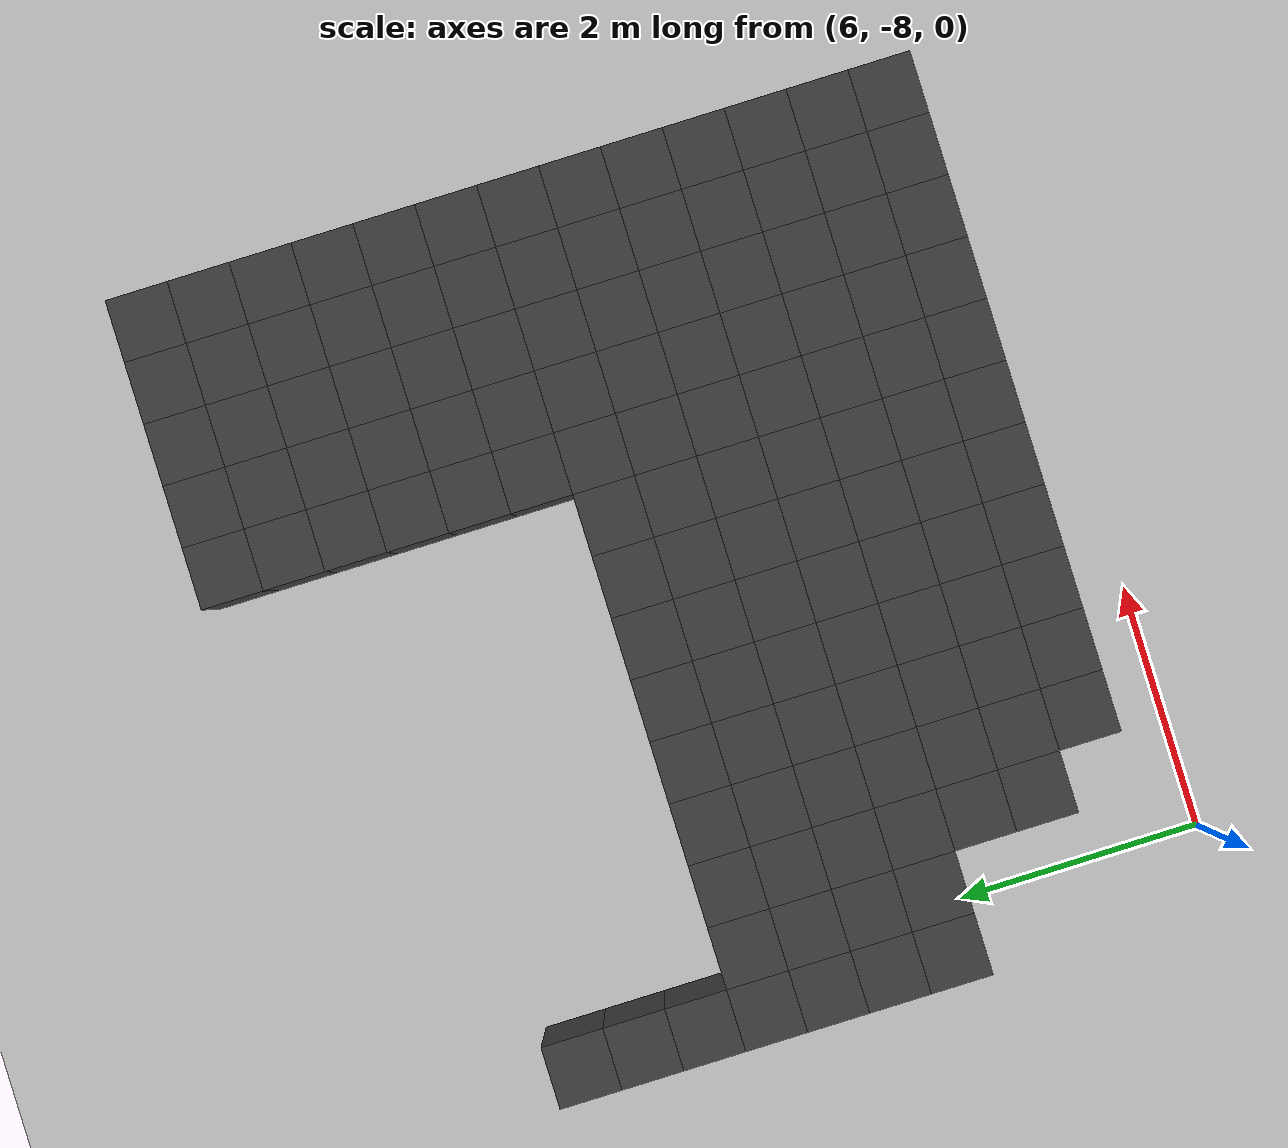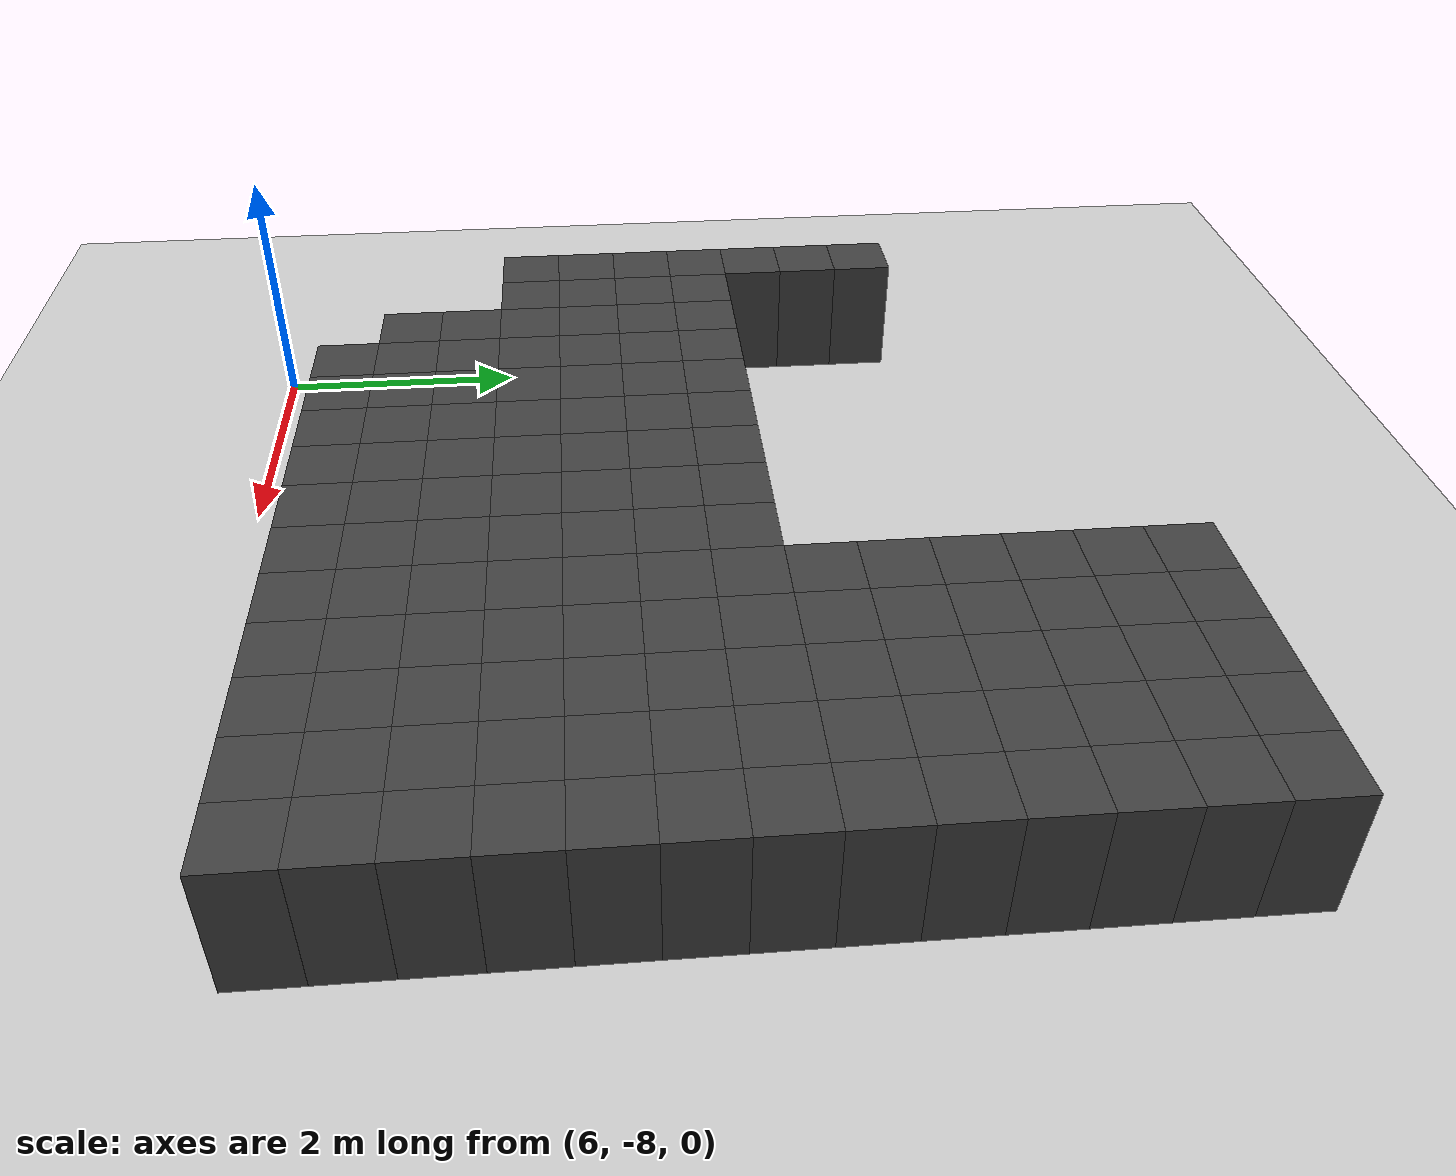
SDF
<sdf version="1.7">
 <world name="map_13364">
  <model name="ground_plane">
   <static>true</static>
   <link name="link">
    <collision name="collision">
     <geometry><plane><normal>0 0 1</normal><size>200 200</size></plane></geometry>
    </collision>
    <visual name="visual">
     <geometry><plane><normal>0 0 1</normal><size>200 200</size></plane></geometry>
     <material><ambient>0.8 0.8 0.8 1</ambient><diffuse>0.8 0.8 0.8 1</diffuse></material>
    </visual>
   </link>
  </model>
  <model name="maze_environment">
   <static>true</static>
   <link name="wall_977">
    <pose>10.250 -1.250 0.500 0 0 0</pose>
    <collision name="col"><geometry><box><size>0.5 0.5 1.0</size></box></geometry></collision>
    <visual name="vis">
     <geometry><box><size>0.5 0.5 1.0</size></box></geometry>
     <material><ambient>0.15 0.15 0.15 1</ambient><diffuse>0.25 0.25 0.25 1</diffuse></material>
    </visual>
   </link>
   <link name="wall_978">
    <pose>10.750 -1.250 0.500 0 0 0</pose>
    <collision name="col"><geometry><box><size>0.5 0.5 1.0</size></box></geometry></collision>
    <visual name="vis">
     <geometry><box><size>0.5 0.5 1.0</size></box></geometry>
     <material><ambient>0.15 0.15 0.15 1</ambient><diffuse>0.25 0.25 0.25 1</diffuse></material>
    </visual>
   </link>
   <link name="wall_979">
    <pose>11.250 -1.250 0.500 0 0 0</pose>
    <collision name="col"><geometry><box><size>0.5 0.5 1.0</size></box></geometry></collision>
    <visual name="vis">
     <geometry><box><size>0.5 0.5 1.0</size></box></geometry>
     <material><ambient>0.15 0.15 0.15 1</ambient><diffuse>0.25 0.25 0.25 1</diffuse></material>
    </visual>
   </link>
   <link name="wall_980">
    <pose>11.750 -1.250 0.500 0 0 0</pose>
    <collision name="col"><geometry><box><size>0.5 0.5 1.0</size></box></geometry></collision>
    <visual name="vis">
     <geometry><box><size>0.5 0.5 1.0</size></box></geometry>
     <material><ambient>0.15 0.15 0.15 1</ambient><diffuse>0.25 0.25 0.25 1</diffuse></material>
    </visual>
   </link>
   <link name="wall_981">
    <pose>12.250 -1.250 0.500 0 0 0</pose>
    <collision name="col"><geometry><box><size>0.5 0.5 1.0</size></box></geometry></collision>
    <visual name="vis">
     <geometry><box><size>0.5 0.5 1.0</size></box></geometry>
     <material><ambient>0.15 0.15 0.15 1</ambient><diffuse>0.25 0.25 0.25 1</diffuse></material>
    </visual>
   </link>
   <link name="wall_1008">
    <pose>10.250 -1.750 0.500 0 0 0</pose>
    <collision name="col"><geometry><box><size>0.5 0.5 1.0</size></box></geometry></collision>
    <visual name="vis">
     <geometry><box><size>0.5 0.5 1.0</size></box></geometry>
     <material><ambient>0.15 0.15 0.15 1</ambient><diffuse>0.25 0.25 0.25 1</diffuse></material>
    </visual>
   </link>
   <link name="wall_1009">
    <pose>10.750 -1.750 0.500 0 0 0</pose>
    <collision name="col"><geometry><box><size>0.5 0.5 1.0</size></box></geometry></collision>
    <visual name="vis">
     <geometry><box><size>0.5 0.5 1.0</size></box></geometry>
     <material><ambient>0.15 0.15 0.15 1</ambient><diffuse>0.25 0.25 0.25 1</diffuse></material>
    </visual>
   </link>
   <link name="wall_1010">
    <pose>11.250 -1.750 0.500 0 0 0</pose>
    <collision name="col"><geometry><box><size>0.5 0.5 1.0</size></box></geometry></collision>
    <visual name="vis">
     <geometry><box><size>0.5 0.5 1.0</size></box></geometry>
     <material><ambient>0.15 0.15 0.15 1</ambient><diffuse>0.25 0.25 0.25 1</diffuse></material>
    </visual>
   </link>
   <link name="wall_1011">
    <pose>11.750 -1.750 0.500 0 0 0</pose>
    <collision name="col"><geometry><box><size>0.5 0.5 1.0</size></box></geometry></collision>
    <visual name="vis">
     <geometry><box><size>0.5 0.5 1.0</size></box></geometry>
     <material><ambient>0.15 0.15 0.15 1</ambient><diffuse>0.25 0.25 0.25 1</diffuse></material>
    </visual>
   </link>
   <link name="wall_1012">
    <pose>12.250 -1.750 0.500 0 0 0</pose>
    <collision name="col"><geometry><box><size>0.5 0.5 1.0</size></box></geometry></collision>
    <visual name="vis">
     <geometry><box><size>0.5 0.5 1.0</size></box></geometry>
     <material><ambient>0.15 0.15 0.15 1</ambient><diffuse>0.25 0.25 0.25 1</diffuse></material>
    </visual>
   </link>
   <link name="wall_1039">
    <pose>10.250 -2.250 0.500 0 0 0</pose>
    <collision name="col"><geometry><box><size>0.5 0.5 1.0</size></box></geometry></collision>
    <visual name="vis">
     <geometry><box><size>0.5 0.5 1.0</size></box></geometry>
     <material><ambient>0.15 0.15 0.15 1</ambient><diffuse>0.25 0.25 0.25 1</diffuse></material>
    </visual>
   </link>
   <link name="wall_1040">
    <pose>10.750 -2.250 0.500 0 0 0</pose>
    <collision name="col"><geometry><box><size>0.5 0.5 1.0</size></box></geometry></collision>
    <visual name="vis">
     <geometry><box><size>0.5 0.5 1.0</size></box></geometry>
     <material><ambient>0.15 0.15 0.15 1</ambient><diffuse>0.25 0.25 0.25 1</diffuse></material>
    </visual>
   </link>
   <link name="wall_1041">
    <pose>11.250 -2.250 0.500 0 0 0</pose>
    <collision name="col"><geometry><box><size>0.5 0.5 1.0</size></box></geometry></collision>
    <visual name="vis">
     <geometry><box><size>0.5 0.5 1.0</size></box></geometry>
     <material><ambient>0.15 0.15 0.15 1</ambient><diffuse>0.25 0.25 0.25 1</diffuse></material>
    </visual>
   </link>
   <link name="wall_1042">
    <pose>11.750 -2.250 0.500 0 0 0</pose>
    <collision name="col"><geometry><box><size>0.5 0.5 1.0</size></box></geometry></collision>
    <visual name="vis">
     <geometry><box><size>0.5 0.5 1.0</size></box></geometry>
     <material><ambient>0.15 0.15 0.15 1</ambient><diffuse>0.25 0.25 0.25 1</diffuse></material>
    </visual>
   </link>
   <link name="wall_1043">
    <pose>12.250 -2.250 0.500 0 0 0</pose>
    <collision name="col"><geometry><box><size>0.5 0.5 1.0</size></box></geometry></collision>
    <visual name="vis">
     <geometry><box><size>0.5 0.5 1.0</size></box></geometry>
     <material><ambient>0.15 0.15 0.15 1</ambient><diffuse>0.25 0.25 0.25 1</diffuse></material>
    </visual>
   </link>
   <link name="wall_1078">
    <pose>5.750 -2.750 0.500 0 0 0</pose>
    <collision name="col"><geometry><box><size>0.5 0.5 1.0</size></box></geometry></collision>
    <visual name="vis">
     <geometry><box><size>0.5 0.5 1.0</size></box></geometry>
     <material><ambient>0.15 0.15 0.15 1</ambient><diffuse>0.25 0.25 0.25 1</diffuse></material>
    </visual>
   </link>
   <link name="wall_1079">
    <pose>10.250 -2.750 0.500 0 0 0</pose>
    <collision name="col"><geometry><box><size>0.5 0.5 1.0</size></box></geometry></collision>
    <visual name="vis">
     <geometry><box><size>0.5 0.5 1.0</size></box></geometry>
     <material><ambient>0.15 0.15 0.15 1</ambient><diffuse>0.25 0.25 0.25 1</diffuse></material>
    </visual>
   </link>
   <link name="wall_1080">
    <pose>10.750 -2.750 0.500 0 0 0</pose>
    <collision name="col"><geometry><box><size>0.5 0.5 1.0</size></box></geometry></collision>
    <visual name="vis">
     <geometry><box><size>0.5 0.5 1.0</size></box></geometry>
     <material><ambient>0.15 0.15 0.15 1</ambient><diffuse>0.25 0.25 0.25 1</diffuse></material>
    </visual>
   </link>
   <link name="wall_1081">
    <pose>11.250 -2.750 0.500 0 0 0</pose>
    <collision name="col"><geometry><box><size>0.5 0.5 1.0</size></box></geometry></collision>
    <visual name="vis">
     <geometry><box><size>0.5 0.5 1.0</size></box></geometry>
     <material><ambient>0.15 0.15 0.15 1</ambient><diffuse>0.25 0.25 0.25 1</diffuse></material>
    </visual>
   </link>
   <link name="wall_1082">
    <pose>11.750 -2.750 0.500 0 0 0</pose>
    <collision name="col"><geometry><box><size>0.5 0.5 1.0</size></box></geometry></collision>
    <visual name="vis">
     <geometry><box><size>0.5 0.5 1.0</size></box></geometry>
     <material><ambient>0.15 0.15 0.15 1</ambient><diffuse>0.25 0.25 0.25 1</diffuse></material>
    </visual>
   </link>
   <link name="wall_1083">
    <pose>12.250 -2.750 0.500 0 0 0</pose>
    <collision name="col"><geometry><box><size>0.5 0.5 1.0</size></box></geometry></collision>
    <visual name="vis">
     <geometry><box><size>0.5 0.5 1.0</size></box></geometry>
     <material><ambient>0.15 0.15 0.15 1</ambient><diffuse>0.25 0.25 0.25 1</diffuse></material>
    </visual>
   </link>
   <link name="wall_1118">
    <pose>5.750 -3.250 0.500 0 0 0</pose>
    <collision name="col"><geometry><box><size>0.5 0.5 1.0</size></box></geometry></collision>
    <visual name="vis">
     <geometry><box><size>0.5 0.5 1.0</size></box></geometry>
     <material><ambient>0.15 0.15 0.15 1</ambient><diffuse>0.25 0.25 0.25 1</diffuse></material>
    </visual>
   </link>
   <link name="wall_1119">
    <pose>10.250 -3.250 0.500 0 0 0</pose>
    <collision name="col"><geometry><box><size>0.5 0.5 1.0</size></box></geometry></collision>
    <visual name="vis">
     <geometry><box><size>0.5 0.5 1.0</size></box></geometry>
     <material><ambient>0.15 0.15 0.15 1</ambient><diffuse>0.25 0.25 0.25 1</diffuse></material>
    </visual>
   </link>
   <link name="wall_1120">
    <pose>10.750 -3.250 0.500 0 0 0</pose>
    <collision name="col"><geometry><box><size>0.5 0.5 1.0</size></box></geometry></collision>
    <visual name="vis">
     <geometry><box><size>0.5 0.5 1.0</size></box></geometry>
     <material><ambient>0.15 0.15 0.15 1</ambient><diffuse>0.25 0.25 0.25 1</diffuse></material>
    </visual>
   </link>
   <link name="wall_1121">
    <pose>11.250 -3.250 0.500 0 0 0</pose>
    <collision name="col"><geometry><box><size>0.5 0.5 1.0</size></box></geometry></collision>
    <visual name="vis">
     <geometry><box><size>0.5 0.5 1.0</size></box></geometry>
     <material><ambient>0.15 0.15 0.15 1</ambient><diffuse>0.25 0.25 0.25 1</diffuse></material>
    </visual>
   </link>
   <link name="wall_1122">
    <pose>11.750 -3.250 0.500 0 0 0</pose>
    <collision name="col"><geometry><box><size>0.5 0.5 1.0</size></box></geometry></collision>
    <visual name="vis">
     <geometry><box><size>0.5 0.5 1.0</size></box></geometry>
     <material><ambient>0.15 0.15 0.15 1</ambient><diffuse>0.25 0.25 0.25 1</diffuse></material>
    </visual>
   </link>
   <link name="wall_1123">
    <pose>12.250 -3.250 0.500 0 0 0</pose>
    <collision name="col"><geometry><box><size>0.5 0.5 1.0</size></box></geometry></collision>
    <visual name="vis">
     <geometry><box><size>0.5 0.5 1.0</size></box></geometry>
     <material><ambient>0.15 0.15 0.15 1</ambient><diffuse>0.25 0.25 0.25 1</diffuse></material>
    </visual>
   </link>
   <link name="wall_1153">
    <pose>5.750 -3.750 0.500 0 0 0</pose>
    <collision name="col"><geometry><box><size>0.5 0.5 1.0</size></box></geometry></collision>
    <visual name="vis">
     <geometry><box><size>0.5 0.5 1.0</size></box></geometry>
     <material><ambient>0.15 0.15 0.15 1</ambient><diffuse>0.25 0.25 0.25 1</diffuse></material>
    </visual>
   </link>
   <link name="wall_1154">
    <pose>10.250 -3.750 0.500 0 0 0</pose>
    <collision name="col"><geometry><box><size>0.5 0.5 1.0</size></box></geometry></collision>
    <visual name="vis">
     <geometry><box><size>0.5 0.5 1.0</size></box></geometry>
     <material><ambient>0.15 0.15 0.15 1</ambient><diffuse>0.25 0.25 0.25 1</diffuse></material>
    </visual>
   </link>
   <link name="wall_1155">
    <pose>10.750 -3.750 0.500 0 0 0</pose>
    <collision name="col"><geometry><box><size>0.5 0.5 1.0</size></box></geometry></collision>
    <visual name="vis">
     <geometry><box><size>0.5 0.5 1.0</size></box></geometry>
     <material><ambient>0.15 0.15 0.15 1</ambient><diffuse>0.25 0.25 0.25 1</diffuse></material>
    </visual>
   </link>
   <link name="wall_1156">
    <pose>11.250 -3.750 0.500 0 0 0</pose>
    <collision name="col"><geometry><box><size>0.5 0.5 1.0</size></box></geometry></collision>
    <visual name="vis">
     <geometry><box><size>0.5 0.5 1.0</size></box></geometry>
     <material><ambient>0.15 0.15 0.15 1</ambient><diffuse>0.25 0.25 0.25 1</diffuse></material>
    </visual>
   </link>
   <link name="wall_1157">
    <pose>11.750 -3.750 0.500 0 0 0</pose>
    <collision name="col"><geometry><box><size>0.5 0.5 1.0</size></box></geometry></collision>
    <visual name="vis">
     <geometry><box><size>0.5 0.5 1.0</size></box></geometry>
     <material><ambient>0.15 0.15 0.15 1</ambient><diffuse>0.25 0.25 0.25 1</diffuse></material>
    </visual>
   </link>
   <link name="wall_1158">
    <pose>12.250 -3.750 0.500 0 0 0</pose>
    <collision name="col"><geometry><box><size>0.5 0.5 1.0</size></box></geometry></collision>
    <visual name="vis">
     <geometry><box><size>0.5 0.5 1.0</size></box></geometry>
     <material><ambient>0.15 0.15 0.15 1</ambient><diffuse>0.25 0.25 0.25 1</diffuse></material>
    </visual>
   </link>
   <link name="wall_1188">
    <pose>5.750 -4.250 0.500 0 0 0</pose>
    <collision name="col"><geometry><box><size>0.5 0.5 1.0</size></box></geometry></collision>
    <visual name="vis">
     <geometry><box><size>0.5 0.5 1.0</size></box></geometry>
     <material><ambient>0.15 0.15 0.15 1</ambient><diffuse>0.25 0.25 0.25 1</diffuse></material>
    </visual>
   </link>
   <link name="wall_1189">
    <pose>6.250 -4.250 0.500 0 0 0</pose>
    <collision name="col"><geometry><box><size>0.5 0.5 1.0</size></box></geometry></collision>
    <visual name="vis">
     <geometry><box><size>0.5 0.5 1.0</size></box></geometry>
     <material><ambient>0.15 0.15 0.15 1</ambient><diffuse>0.25 0.25 0.25 1</diffuse></material>
    </visual>
   </link>
   <link name="wall_1190">
    <pose>6.750 -4.250 0.500 0 0 0</pose>
    <collision name="col"><geometry><box><size>0.5 0.5 1.0</size></box></geometry></collision>
    <visual name="vis">
     <geometry><box><size>0.5 0.5 1.0</size></box></geometry>
     <material><ambient>0.15 0.15 0.15 1</ambient><diffuse>0.25 0.25 0.25 1</diffuse></material>
    </visual>
   </link>
   <link name="wall_1191">
    <pose>7.250 -4.250 0.500 0 0 0</pose>
    <collision name="col"><geometry><box><size>0.5 0.5 1.0</size></box></geometry></collision>
    <visual name="vis">
     <geometry><box><size>0.5 0.5 1.0</size></box></geometry>
     <material><ambient>0.15 0.15 0.15 1</ambient><diffuse>0.25 0.25 0.25 1</diffuse></material>
    </visual>
   </link>
   <link name="wall_1192">
    <pose>7.750 -4.250 0.500 0 0 0</pose>
    <collision name="col"><geometry><box><size>0.5 0.5 1.0</size></box></geometry></collision>
    <visual name="vis">
     <geometry><box><size>0.5 0.5 1.0</size></box></geometry>
     <material><ambient>0.15 0.15 0.15 1</ambient><diffuse>0.25 0.25 0.25 1</diffuse></material>
    </visual>
   </link>
   <link name="wall_1193">
    <pose>8.250 -4.250 0.500 0 0 0</pose>
    <collision name="col"><geometry><box><size>0.5 0.5 1.0</size></box></geometry></collision>
    <visual name="vis">
     <geometry><box><size>0.5 0.5 1.0</size></box></geometry>
     <material><ambient>0.15 0.15 0.15 1</ambient><diffuse>0.25 0.25 0.25 1</diffuse></material>
    </visual>
   </link>
   <link name="wall_1194">
    <pose>8.750 -4.250 0.500 0 0 0</pose>
    <collision name="col"><geometry><box><size>0.5 0.5 1.0</size></box></geometry></collision>
    <visual name="vis">
     <geometry><box><size>0.5 0.5 1.0</size></box></geometry>
     <material><ambient>0.15 0.15 0.15 1</ambient><diffuse>0.25 0.25 0.25 1</diffuse></material>
    </visual>
   </link>
   <link name="wall_1195">
    <pose>9.250 -4.250 0.500 0 0 0</pose>
    <collision name="col"><geometry><box><size>0.5 0.5 1.0</size></box></geometry></collision>
    <visual name="vis">
     <geometry><box><size>0.5 0.5 1.0</size></box></geometry>
     <material><ambient>0.15 0.15 0.15 1</ambient><diffuse>0.25 0.25 0.25 1</diffuse></material>
    </visual>
   </link>
   <link name="wall_1196">
    <pose>9.750 -4.250 0.500 0 0 0</pose>
    <collision name="col"><geometry><box><size>0.5 0.5 1.0</size></box></geometry></collision>
    <visual name="vis">
     <geometry><box><size>0.5 0.5 1.0</size></box></geometry>
     <material><ambient>0.15 0.15 0.15 1</ambient><diffuse>0.25 0.25 0.25 1</diffuse></material>
    </visual>
   </link>
   <link name="wall_1197">
    <pose>10.250 -4.250 0.500 0 0 0</pose>
    <collision name="col"><geometry><box><size>0.5 0.5 1.0</size></box></geometry></collision>
    <visual name="vis">
     <geometry><box><size>0.5 0.5 1.0</size></box></geometry>
     <material><ambient>0.15 0.15 0.15 1</ambient><diffuse>0.25 0.25 0.25 1</diffuse></material>
    </visual>
   </link>
   <link name="wall_1198">
    <pose>10.750 -4.250 0.500 0 0 0</pose>
    <collision name="col"><geometry><box><size>0.5 0.5 1.0</size></box></geometry></collision>
    <visual name="vis">
     <geometry><box><size>0.5 0.5 1.0</size></box></geometry>
     <material><ambient>0.15 0.15 0.15 1</ambient><diffuse>0.25 0.25 0.25 1</diffuse></material>
    </visual>
   </link>
   <link name="wall_1199">
    <pose>11.250 -4.250 0.500 0 0 0</pose>
    <collision name="col"><geometry><box><size>0.5 0.5 1.0</size></box></geometry></collision>
    <visual name="vis">
     <geometry><box><size>0.5 0.5 1.0</size></box></geometry>
     <material><ambient>0.15 0.15 0.15 1</ambient><diffuse>0.25 0.25 0.25 1</diffuse></material>
    </visual>
   </link>
   <link name="wall_1200">
    <pose>11.750 -4.250 0.500 0 0 0</pose>
    <collision name="col"><geometry><box><size>0.5 0.5 1.0</size></box></geometry></collision>
    <visual name="vis">
     <geometry><box><size>0.5 0.5 1.0</size></box></geometry>
     <material><ambient>0.15 0.15 0.15 1</ambient><diffuse>0.25 0.25 0.25 1</diffuse></material>
    </visual>
   </link>
   <link name="wall_1201">
    <pose>12.250 -4.250 0.500 0 0 0</pose>
    <collision name="col"><geometry><box><size>0.5 0.5 1.0</size></box></geometry></collision>
    <visual name="vis">
     <geometry><box><size>0.5 0.5 1.0</size></box></geometry>
     <material><ambient>0.15 0.15 0.15 1</ambient><diffuse>0.25 0.25 0.25 1</diffuse></material>
    </visual>
   </link>
   <link name="wall_1231">
    <pose>5.750 -4.750 0.500 0 0 0</pose>
    <collision name="col"><geometry><box><size>0.5 0.5 1.0</size></box></geometry></collision>
    <visual name="vis">
     <geometry><box><size>0.5 0.5 1.0</size></box></geometry>
     <material><ambient>0.15 0.15 0.15 1</ambient><diffuse>0.25 0.25 0.25 1</diffuse></material>
    </visual>
   </link>
   <link name="wall_1232">
    <pose>6.250 -4.750 0.500 0 0 0</pose>
    <collision name="col"><geometry><box><size>0.5 0.5 1.0</size></box></geometry></collision>
    <visual name="vis">
     <geometry><box><size>0.5 0.5 1.0</size></box></geometry>
     <material><ambient>0.15 0.15 0.15 1</ambient><diffuse>0.25 0.25 0.25 1</diffuse></material>
    </visual>
   </link>
   <link name="wall_1233">
    <pose>6.750 -4.750 0.500 0 0 0</pose>
    <collision name="col"><geometry><box><size>0.5 0.5 1.0</size></box></geometry></collision>
    <visual name="vis">
     <geometry><box><size>0.5 0.5 1.0</size></box></geometry>
     <material><ambient>0.15 0.15 0.15 1</ambient><diffuse>0.25 0.25 0.25 1</diffuse></material>
    </visual>
   </link>
   <link name="wall_1234">
    <pose>7.250 -4.750 0.500 0 0 0</pose>
    <collision name="col"><geometry><box><size>0.5 0.5 1.0</size></box></geometry></collision>
    <visual name="vis">
     <geometry><box><size>0.5 0.5 1.0</size></box></geometry>
     <material><ambient>0.15 0.15 0.15 1</ambient><diffuse>0.25 0.25 0.25 1</diffuse></material>
    </visual>
   </link>
   <link name="wall_1235">
    <pose>7.750 -4.750 0.500 0 0 0</pose>
    <collision name="col"><geometry><box><size>0.5 0.5 1.0</size></box></geometry></collision>
    <visual name="vis">
     <geometry><box><size>0.5 0.5 1.0</size></box></geometry>
     <material><ambient>0.15 0.15 0.15 1</ambient><diffuse>0.25 0.25 0.25 1</diffuse></material>
    </visual>
   </link>
   <link name="wall_1236">
    <pose>8.250 -4.750 0.500 0 0 0</pose>
    <collision name="col"><geometry><box><size>0.5 0.5 1.0</size></box></geometry></collision>
    <visual name="vis">
     <geometry><box><size>0.5 0.5 1.0</size></box></geometry>
     <material><ambient>0.15 0.15 0.15 1</ambient><diffuse>0.25 0.25 0.25 1</diffuse></material>
    </visual>
   </link>
   <link name="wall_1237">
    <pose>8.750 -4.750 0.500 0 0 0</pose>
    <collision name="col"><geometry><box><size>0.5 0.5 1.0</size></box></geometry></collision>
    <visual name="vis">
     <geometry><box><size>0.5 0.5 1.0</size></box></geometry>
     <material><ambient>0.15 0.15 0.15 1</ambient><diffuse>0.25 0.25 0.25 1</diffuse></material>
    </visual>
   </link>
   <link name="wall_1238">
    <pose>9.250 -4.750 0.500 0 0 0</pose>
    <collision name="col"><geometry><box><size>0.5 0.5 1.0</size></box></geometry></collision>
    <visual name="vis">
     <geometry><box><size>0.5 0.5 1.0</size></box></geometry>
     <material><ambient>0.15 0.15 0.15 1</ambient><diffuse>0.25 0.25 0.25 1</diffuse></material>
    </visual>
   </link>
   <link name="wall_1239">
    <pose>9.750 -4.750 0.500 0 0 0</pose>
    <collision name="col"><geometry><box><size>0.5 0.5 1.0</size></box></geometry></collision>
    <visual name="vis">
     <geometry><box><size>0.5 0.5 1.0</size></box></geometry>
     <material><ambient>0.15 0.15 0.15 1</ambient><diffuse>0.25 0.25 0.25 1</diffuse></material>
    </visual>
   </link>
   <link name="wall_1240">
    <pose>10.250 -4.750 0.500 0 0 0</pose>
    <collision name="col"><geometry><box><size>0.5 0.5 1.0</size></box></geometry></collision>
    <visual name="vis">
     <geometry><box><size>0.5 0.5 1.0</size></box></geometry>
     <material><ambient>0.15 0.15 0.15 1</ambient><diffuse>0.25 0.25 0.25 1</diffuse></material>
    </visual>
   </link>
   <link name="wall_1241">
    <pose>10.750 -4.750 0.500 0 0 0</pose>
    <collision name="col"><geometry><box><size>0.5 0.5 1.0</size></box></geometry></collision>
    <visual name="vis">
     <geometry><box><size>0.5 0.5 1.0</size></box></geometry>
     <material><ambient>0.15 0.15 0.15 1</ambient><diffuse>0.25 0.25 0.25 1</diffuse></material>
    </visual>
   </link>
   <link name="wall_1242">
    <pose>11.250 -4.750 0.500 0 0 0</pose>
    <collision name="col"><geometry><box><size>0.5 0.5 1.0</size></box></geometry></collision>
    <visual name="vis">
     <geometry><box><size>0.5 0.5 1.0</size></box></geometry>
     <material><ambient>0.15 0.15 0.15 1</ambient><diffuse>0.25 0.25 0.25 1</diffuse></material>
    </visual>
   </link>
   <link name="wall_1243">
    <pose>11.750 -4.750 0.500 0 0 0</pose>
    <collision name="col"><geometry><box><size>0.5 0.5 1.0</size></box></geometry></collision>
    <visual name="vis">
     <geometry><box><size>0.5 0.5 1.0</size></box></geometry>
     <material><ambient>0.15 0.15 0.15 1</ambient><diffuse>0.25 0.25 0.25 1</diffuse></material>
    </visual>
   </link>
   <link name="wall_1244">
    <pose>12.250 -4.750 0.500 0 0 0</pose>
    <collision name="col"><geometry><box><size>0.5 0.5 1.0</size></box></geometry></collision>
    <visual name="vis">
     <geometry><box><size>0.5 0.5 1.0</size></box></geometry>
     <material><ambient>0.15 0.15 0.15 1</ambient><diffuse>0.25 0.25 0.25 1</diffuse></material>
    </visual>
   </link>
   <link name="wall_1274">
    <pose>5.750 -5.250 0.500 0 0 0</pose>
    <collision name="col"><geometry><box><size>0.5 0.5 1.0</size></box></geometry></collision>
    <visual name="vis">
     <geometry><box><size>0.5 0.5 1.0</size></box></geometry>
     <material><ambient>0.15 0.15 0.15 1</ambient><diffuse>0.25 0.25 0.25 1</diffuse></material>
    </visual>
   </link>
   <link name="wall_1275">
    <pose>6.250 -5.250 0.500 0 0 0</pose>
    <collision name="col"><geometry><box><size>0.5 0.5 1.0</size></box></geometry></collision>
    <visual name="vis">
     <geometry><box><size>0.5 0.5 1.0</size></box></geometry>
     <material><ambient>0.15 0.15 0.15 1</ambient><diffuse>0.25 0.25 0.25 1</diffuse></material>
    </visual>
   </link>
   <link name="wall_1276">
    <pose>6.750 -5.250 0.500 0 0 0</pose>
    <collision name="col"><geometry><box><size>0.5 0.5 1.0</size></box></geometry></collision>
    <visual name="vis">
     <geometry><box><size>0.5 0.5 1.0</size></box></geometry>
     <material><ambient>0.15 0.15 0.15 1</ambient><diffuse>0.25 0.25 0.25 1</diffuse></material>
    </visual>
   </link>
   <link name="wall_1277">
    <pose>7.250 -5.250 0.500 0 0 0</pose>
    <collision name="col"><geometry><box><size>0.5 0.5 1.0</size></box></geometry></collision>
    <visual name="vis">
     <geometry><box><size>0.5 0.5 1.0</size></box></geometry>
     <material><ambient>0.15 0.15 0.15 1</ambient><diffuse>0.25 0.25 0.25 1</diffuse></material>
    </visual>
   </link>
   <link name="wall_1278">
    <pose>7.750 -5.250 0.500 0 0 0</pose>
    <collision name="col"><geometry><box><size>0.5 0.5 1.0</size></box></geometry></collision>
    <visual name="vis">
     <geometry><box><size>0.5 0.5 1.0</size></box></geometry>
     <material><ambient>0.15 0.15 0.15 1</ambient><diffuse>0.25 0.25 0.25 1</diffuse></material>
    </visual>
   </link>
   <link name="wall_1279">
    <pose>8.250 -5.250 0.500 0 0 0</pose>
    <collision name="col"><geometry><box><size>0.5 0.5 1.0</size></box></geometry></collision>
    <visual name="vis">
     <geometry><box><size>0.5 0.5 1.0</size></box></geometry>
     <material><ambient>0.15 0.15 0.15 1</ambient><diffuse>0.25 0.25 0.25 1</diffuse></material>
    </visual>
   </link>
   <link name="wall_1280">
    <pose>8.750 -5.250 0.500 0 0 0</pose>
    <collision name="col"><geometry><box><size>0.5 0.5 1.0</size></box></geometry></collision>
    <visual name="vis">
     <geometry><box><size>0.5 0.5 1.0</size></box></geometry>
     <material><ambient>0.15 0.15 0.15 1</ambient><diffuse>0.25 0.25 0.25 1</diffuse></material>
    </visual>
   </link>
   <link name="wall_1281">
    <pose>9.250 -5.250 0.500 0 0 0</pose>
    <collision name="col"><geometry><box><size>0.5 0.5 1.0</size></box></geometry></collision>
    <visual name="vis">
     <geometry><box><size>0.5 0.5 1.0</size></box></geometry>
     <material><ambient>0.15 0.15 0.15 1</ambient><diffuse>0.25 0.25 0.25 1</diffuse></material>
    </visual>
   </link>
   <link name="wall_1282">
    <pose>9.750 -5.250 0.500 0 0 0</pose>
    <collision name="col"><geometry><box><size>0.5 0.5 1.0</size></box></geometry></collision>
    <visual name="vis">
     <geometry><box><size>0.5 0.5 1.0</size></box></geometry>
     <material><ambient>0.15 0.15 0.15 1</ambient><diffuse>0.25 0.25 0.25 1</diffuse></material>
    </visual>
   </link>
   <link name="wall_1283">
    <pose>10.250 -5.250 0.500 0 0 0</pose>
    <collision name="col"><geometry><box><size>0.5 0.5 1.0</size></box></geometry></collision>
    <visual name="vis">
     <geometry><box><size>0.5 0.5 1.0</size></box></geometry>
     <material><ambient>0.15 0.15 0.15 1</ambient><diffuse>0.25 0.25 0.25 1</diffuse></material>
    </visual>
   </link>
   <link name="wall_1284">
    <pose>10.750 -5.250 0.500 0 0 0</pose>
    <collision name="col"><geometry><box><size>0.5 0.5 1.0</size></box></geometry></collision>
    <visual name="vis">
     <geometry><box><size>0.5 0.5 1.0</size></box></geometry>
     <material><ambient>0.15 0.15 0.15 1</ambient><diffuse>0.25 0.25 0.25 1</diffuse></material>
    </visual>
   </link>
   <link name="wall_1285">
    <pose>11.250 -5.250 0.500 0 0 0</pose>
    <collision name="col"><geometry><box><size>0.5 0.5 1.0</size></box></geometry></collision>
    <visual name="vis">
     <geometry><box><size>0.5 0.5 1.0</size></box></geometry>
     <material><ambient>0.15 0.15 0.15 1</ambient><diffuse>0.25 0.25 0.25 1</diffuse></material>
    </visual>
   </link>
   <link name="wall_1286">
    <pose>11.750 -5.250 0.500 0 0 0</pose>
    <collision name="col"><geometry><box><size>0.5 0.5 1.0</size></box></geometry></collision>
    <visual name="vis">
     <geometry><box><size>0.5 0.5 1.0</size></box></geometry>
     <material><ambient>0.15 0.15 0.15 1</ambient><diffuse>0.25 0.25 0.25 1</diffuse></material>
    </visual>
   </link>
   <link name="wall_1287">
    <pose>12.250 -5.250 0.500 0 0 0</pose>
    <collision name="col"><geometry><box><size>0.5 0.5 1.0</size></box></geometry></collision>
    <visual name="vis">
     <geometry><box><size>0.5 0.5 1.0</size></box></geometry>
     <material><ambient>0.15 0.15 0.15 1</ambient><diffuse>0.25 0.25 0.25 1</diffuse></material>
    </visual>
   </link>
   <link name="wall_1317">
    <pose>5.750 -5.750 0.500 0 0 0</pose>
    <collision name="col"><geometry><box><size>0.5 0.5 1.0</size></box></geometry></collision>
    <visual name="vis">
     <geometry><box><size>0.5 0.5 1.0</size></box></geometry>
     <material><ambient>0.15 0.15 0.15 1</ambient><diffuse>0.25 0.25 0.25 1</diffuse></material>
    </visual>
   </link>
   <link name="wall_1318">
    <pose>6.250 -5.750 0.500 0 0 0</pose>
    <collision name="col"><geometry><box><size>0.5 0.5 1.0</size></box></geometry></collision>
    <visual name="vis">
     <geometry><box><size>0.5 0.5 1.0</size></box></geometry>
     <material><ambient>0.15 0.15 0.15 1</ambient><diffuse>0.25 0.25 0.25 1</diffuse></material>
    </visual>
   </link>
   <link name="wall_1319">
    <pose>6.750 -5.750 0.500 0 0 0</pose>
    <collision name="col"><geometry><box><size>0.5 0.5 1.0</size></box></geometry></collision>
    <visual name="vis">
     <geometry><box><size>0.5 0.5 1.0</size></box></geometry>
     <material><ambient>0.15 0.15 0.15 1</ambient><diffuse>0.25 0.25 0.25 1</diffuse></material>
    </visual>
   </link>
   <link name="wall_1320">
    <pose>7.250 -5.750 0.500 0 0 0</pose>
    <collision name="col"><geometry><box><size>0.5 0.5 1.0</size></box></geometry></collision>
    <visual name="vis">
     <geometry><box><size>0.5 0.5 1.0</size></box></geometry>
     <material><ambient>0.15 0.15 0.15 1</ambient><diffuse>0.25 0.25 0.25 1</diffuse></material>
    </visual>
   </link>
   <link name="wall_1321">
    <pose>7.750 -5.750 0.500 0 0 0</pose>
    <collision name="col"><geometry><box><size>0.5 0.5 1.0</size></box></geometry></collision>
    <visual name="vis">
     <geometry><box><size>0.5 0.5 1.0</size></box></geometry>
     <material><ambient>0.15 0.15 0.15 1</ambient><diffuse>0.25 0.25 0.25 1</diffuse></material>
    </visual>
   </link>
   <link name="wall_1322">
    <pose>8.250 -5.750 0.500 0 0 0</pose>
    <collision name="col"><geometry><box><size>0.5 0.5 1.0</size></box></geometry></collision>
    <visual name="vis">
     <geometry><box><size>0.5 0.5 1.0</size></box></geometry>
     <material><ambient>0.15 0.15 0.15 1</ambient><diffuse>0.25 0.25 0.25 1</diffuse></material>
    </visual>
   </link>
   <link name="wall_1323">
    <pose>8.750 -5.750 0.500 0 0 0</pose>
    <collision name="col"><geometry><box><size>0.5 0.5 1.0</size></box></geometry></collision>
    <visual name="vis">
     <geometry><box><size>0.5 0.5 1.0</size></box></geometry>
     <material><ambient>0.15 0.15 0.15 1</ambient><diffuse>0.25 0.25 0.25 1</diffuse></material>
    </visual>
   </link>
   <link name="wall_1324">
    <pose>9.250 -5.750 0.500 0 0 0</pose>
    <collision name="col"><geometry><box><size>0.5 0.5 1.0</size></box></geometry></collision>
    <visual name="vis">
     <geometry><box><size>0.5 0.5 1.0</size></box></geometry>
     <material><ambient>0.15 0.15 0.15 1</ambient><diffuse>0.25 0.25 0.25 1</diffuse></material>
    </visual>
   </link>
   <link name="wall_1325">
    <pose>9.750 -5.750 0.500 0 0 0</pose>
    <collision name="col"><geometry><box><size>0.5 0.5 1.0</size></box></geometry></collision>
    <visual name="vis">
     <geometry><box><size>0.5 0.5 1.0</size></box></geometry>
     <material><ambient>0.15 0.15 0.15 1</ambient><diffuse>0.25 0.25 0.25 1</diffuse></material>
    </visual>
   </link>
   <link name="wall_1326">
    <pose>10.250 -5.750 0.500 0 0 0</pose>
    <collision name="col"><geometry><box><size>0.5 0.5 1.0</size></box></geometry></collision>
    <visual name="vis">
     <geometry><box><size>0.5 0.5 1.0</size></box></geometry>
     <material><ambient>0.15 0.15 0.15 1</ambient><diffuse>0.25 0.25 0.25 1</diffuse></material>
    </visual>
   </link>
   <link name="wall_1327">
    <pose>10.750 -5.750 0.500 0 0 0</pose>
    <collision name="col"><geometry><box><size>0.5 0.5 1.0</size></box></geometry></collision>
    <visual name="vis">
     <geometry><box><size>0.5 0.5 1.0</size></box></geometry>
     <material><ambient>0.15 0.15 0.15 1</ambient><diffuse>0.25 0.25 0.25 1</diffuse></material>
    </visual>
   </link>
   <link name="wall_1328">
    <pose>11.250 -5.750 0.500 0 0 0</pose>
    <collision name="col"><geometry><box><size>0.5 0.5 1.0</size></box></geometry></collision>
    <visual name="vis">
     <geometry><box><size>0.5 0.5 1.0</size></box></geometry>
     <material><ambient>0.15 0.15 0.15 1</ambient><diffuse>0.25 0.25 0.25 1</diffuse></material>
    </visual>
   </link>
   <link name="wall_1329">
    <pose>11.750 -5.750 0.500 0 0 0</pose>
    <collision name="col"><geometry><box><size>0.5 0.5 1.0</size></box></geometry></collision>
    <visual name="vis">
     <geometry><box><size>0.5 0.5 1.0</size></box></geometry>
     <material><ambient>0.15 0.15 0.15 1</ambient><diffuse>0.25 0.25 0.25 1</diffuse></material>
    </visual>
   </link>
   <link name="wall_1330">
    <pose>12.250 -5.750 0.500 0 0 0</pose>
    <collision name="col"><geometry><box><size>0.5 0.5 1.0</size></box></geometry></collision>
    <visual name="vis">
     <geometry><box><size>0.5 0.5 1.0</size></box></geometry>
     <material><ambient>0.15 0.15 0.15 1</ambient><diffuse>0.25 0.25 0.25 1</diffuse></material>
    </visual>
   </link>
   <link name="wall_1356">
    <pose>6.750 -6.250 0.500 0 0 0</pose>
    <collision name="col"><geometry><box><size>0.5 0.5 1.0</size></box></geometry></collision>
    <visual name="vis">
     <geometry><box><size>0.5 0.5 1.0</size></box></geometry>
     <material><ambient>0.15 0.15 0.15 1</ambient><diffuse>0.25 0.25 0.25 1</diffuse></material>
    </visual>
   </link>
   <link name="wall_1357">
    <pose>7.250 -6.250 0.500 0 0 0</pose>
    <collision name="col"><geometry><box><size>0.5 0.5 1.0</size></box></geometry></collision>
    <visual name="vis">
     <geometry><box><size>0.5 0.5 1.0</size></box></geometry>
     <material><ambient>0.15 0.15 0.15 1</ambient><diffuse>0.25 0.25 0.25 1</diffuse></material>
    </visual>
   </link>
   <link name="wall_1358">
    <pose>7.750 -6.250 0.500 0 0 0</pose>
    <collision name="col"><geometry><box><size>0.5 0.5 1.0</size></box></geometry></collision>
    <visual name="vis">
     <geometry><box><size>0.5 0.5 1.0</size></box></geometry>
     <material><ambient>0.15 0.15 0.15 1</ambient><diffuse>0.25 0.25 0.25 1</diffuse></material>
    </visual>
   </link>
   <link name="wall_1359">
    <pose>8.250 -6.250 0.500 0 0 0</pose>
    <collision name="col"><geometry><box><size>0.5 0.5 1.0</size></box></geometry></collision>
    <visual name="vis">
     <geometry><box><size>0.5 0.5 1.0</size></box></geometry>
     <material><ambient>0.15 0.15 0.15 1</ambient><diffuse>0.25 0.25 0.25 1</diffuse></material>
    </visual>
   </link>
   <link name="wall_1360">
    <pose>8.750 -6.250 0.500 0 0 0</pose>
    <collision name="col"><geometry><box><size>0.5 0.5 1.0</size></box></geometry></collision>
    <visual name="vis">
     <geometry><box><size>0.5 0.5 1.0</size></box></geometry>
     <material><ambient>0.15 0.15 0.15 1</ambient><diffuse>0.25 0.25 0.25 1</diffuse></material>
    </visual>
   </link>
   <link name="wall_1361">
    <pose>9.250 -6.250 0.500 0 0 0</pose>
    <collision name="col"><geometry><box><size>0.5 0.5 1.0</size></box></geometry></collision>
    <visual name="vis">
     <geometry><box><size>0.5 0.5 1.0</size></box></geometry>
     <material><ambient>0.15 0.15 0.15 1</ambient><diffuse>0.25 0.25 0.25 1</diffuse></material>
    </visual>
   </link>
   <link name="wall_1362">
    <pose>9.750 -6.250 0.500 0 0 0</pose>
    <collision name="col"><geometry><box><size>0.5 0.5 1.0</size></box></geometry></collision>
    <visual name="vis">
     <geometry><box><size>0.5 0.5 1.0</size></box></geometry>
     <material><ambient>0.15 0.15 0.15 1</ambient><diffuse>0.25 0.25 0.25 1</diffuse></material>
    </visual>
   </link>
   <link name="wall_1363">
    <pose>10.250 -6.250 0.500 0 0 0</pose>
    <collision name="col"><geometry><box><size>0.5 0.5 1.0</size></box></geometry></collision>
    <visual name="vis">
     <geometry><box><size>0.5 0.5 1.0</size></box></geometry>
     <material><ambient>0.15 0.15 0.15 1</ambient><diffuse>0.25 0.25 0.25 1</diffuse></material>
    </visual>
   </link>
   <link name="wall_1364">
    <pose>10.750 -6.250 0.500 0 0 0</pose>
    <collision name="col"><geometry><box><size>0.5 0.5 1.0</size></box></geometry></collision>
    <visual name="vis">
     <geometry><box><size>0.5 0.5 1.0</size></box></geometry>
     <material><ambient>0.15 0.15 0.15 1</ambient><diffuse>0.25 0.25 0.25 1</diffuse></material>
    </visual>
   </link>
   <link name="wall_1365">
    <pose>11.250 -6.250 0.500 0 0 0</pose>
    <collision name="col"><geometry><box><size>0.5 0.5 1.0</size></box></geometry></collision>
    <visual name="vis">
     <geometry><box><size>0.5 0.5 1.0</size></box></geometry>
     <material><ambient>0.15 0.15 0.15 1</ambient><diffuse>0.25 0.25 0.25 1</diffuse></material>
    </visual>
   </link>
   <link name="wall_1366">
    <pose>11.750 -6.250 0.500 0 0 0</pose>
    <collision name="col"><geometry><box><size>0.5 0.5 1.0</size></box></geometry></collision>
    <visual name="vis">
     <geometry><box><size>0.5 0.5 1.0</size></box></geometry>
     <material><ambient>0.15 0.15 0.15 1</ambient><diffuse>0.25 0.25 0.25 1</diffuse></material>
    </visual>
   </link>
   <link name="wall_1367">
    <pose>12.250 -6.250 0.500 0 0 0</pose>
    <collision name="col"><geometry><box><size>0.5 0.5 1.0</size></box></geometry></collision>
    <visual name="vis">
     <geometry><box><size>0.5 0.5 1.0</size></box></geometry>
     <material><ambient>0.15 0.15 0.15 1</ambient><diffuse>0.25 0.25 0.25 1</diffuse></material>
    </visual>
   </link>
   <link name="wall_1393">
    <pose>6.750 -6.750 0.500 0 0 0</pose>
    <collision name="col"><geometry><box><size>0.5 0.5 1.0</size></box></geometry></collision>
    <visual name="vis">
     <geometry><box><size>0.5 0.5 1.0</size></box></geometry>
     <material><ambient>0.15 0.15 0.15 1</ambient><diffuse>0.25 0.25 0.25 1</diffuse></material>
    </visual>
   </link>
   <link name="wall_1394">
    <pose>7.250 -6.750 0.500 0 0 0</pose>
    <collision name="col"><geometry><box><size>0.5 0.5 1.0</size></box></geometry></collision>
    <visual name="vis">
     <geometry><box><size>0.5 0.5 1.0</size></box></geometry>
     <material><ambient>0.15 0.15 0.15 1</ambient><diffuse>0.25 0.25 0.25 1</diffuse></material>
    </visual>
   </link>
   <link name="wall_1395">
    <pose>7.750 -6.750 0.500 0 0 0</pose>
    <collision name="col"><geometry><box><size>0.5 0.5 1.0</size></box></geometry></collision>
    <visual name="vis">
     <geometry><box><size>0.5 0.5 1.0</size></box></geometry>
     <material><ambient>0.15 0.15 0.15 1</ambient><diffuse>0.25 0.25 0.25 1</diffuse></material>
    </visual>
   </link>
   <link name="wall_1396">
    <pose>8.250 -6.750 0.500 0 0 0</pose>
    <collision name="col"><geometry><box><size>0.5 0.5 1.0</size></box></geometry></collision>
    <visual name="vis">
     <geometry><box><size>0.5 0.5 1.0</size></box></geometry>
     <material><ambient>0.15 0.15 0.15 1</ambient><diffuse>0.25 0.25 0.25 1</diffuse></material>
    </visual>
   </link>
   <link name="wall_1397">
    <pose>8.750 -6.750 0.500 0 0 0</pose>
    <collision name="col"><geometry><box><size>0.5 0.5 1.0</size></box></geometry></collision>
    <visual name="vis">
     <geometry><box><size>0.5 0.5 1.0</size></box></geometry>
     <material><ambient>0.15 0.15 0.15 1</ambient><diffuse>0.25 0.25 0.25 1</diffuse></material>
    </visual>
   </link>
   <link name="wall_1398">
    <pose>9.250 -6.750 0.500 0 0 0</pose>
    <collision name="col"><geometry><box><size>0.5 0.5 1.0</size></box></geometry></collision>
    <visual name="vis">
     <geometry><box><size>0.5 0.5 1.0</size></box></geometry>
     <material><ambient>0.15 0.15 0.15 1</ambient><diffuse>0.25 0.25 0.25 1</diffuse></material>
    </visual>
   </link>
   <link name="wall_1399">
    <pose>9.750 -6.750 0.500 0 0 0</pose>
    <collision name="col"><geometry><box><size>0.5 0.5 1.0</size></box></geometry></collision>
    <visual name="vis">
     <geometry><box><size>0.5 0.5 1.0</size></box></geometry>
     <material><ambient>0.15 0.15 0.15 1</ambient><diffuse>0.25 0.25 0.25 1</diffuse></material>
    </visual>
   </link>
   <link name="wall_1400">
    <pose>10.250 -6.750 0.500 0 0 0</pose>
    <collision name="col"><geometry><box><size>0.5 0.5 1.0</size></box></geometry></collision>
    <visual name="vis">
     <geometry><box><size>0.5 0.5 1.0</size></box></geometry>
     <material><ambient>0.15 0.15 0.15 1</ambient><diffuse>0.25 0.25 0.25 1</diffuse></material>
    </visual>
   </link>
   <link name="wall_1401">
    <pose>10.750 -6.750 0.500 0 0 0</pose>
    <collision name="col"><geometry><box><size>0.5 0.5 1.0</size></box></geometry></collision>
    <visual name="vis">
     <geometry><box><size>0.5 0.5 1.0</size></box></geometry>
     <material><ambient>0.15 0.15 0.15 1</ambient><diffuse>0.25 0.25 0.25 1</diffuse></material>
    </visual>
   </link>
   <link name="wall_1402">
    <pose>11.250 -6.750 0.500 0 0 0</pose>
    <collision name="col"><geometry><box><size>0.5 0.5 1.0</size></box></geometry></collision>
    <visual name="vis">
     <geometry><box><size>0.5 0.5 1.0</size></box></geometry>
     <material><ambient>0.15 0.15 0.15 1</ambient><diffuse>0.25 0.25 0.25 1</diffuse></material>
    </visual>
   </link>
   <link name="wall_1403">
    <pose>11.750 -6.750 0.500 0 0 0</pose>
    <collision name="col"><geometry><box><size>0.5 0.5 1.0</size></box></geometry></collision>
    <visual name="vis">
     <geometry><box><size>0.5 0.5 1.0</size></box></geometry>
     <material><ambient>0.15 0.15 0.15 1</ambient><diffuse>0.25 0.25 0.25 1</diffuse></material>
    </visual>
   </link>
   <link name="wall_1404">
    <pose>12.250 -6.750 0.500 0 0 0</pose>
    <collision name="col"><geometry><box><size>0.5 0.5 1.0</size></box></geometry></collision>
    <visual name="vis">
     <geometry><box><size>0.5 0.5 1.0</size></box></geometry>
     <material><ambient>0.15 0.15 0.15 1</ambient><diffuse>0.25 0.25 0.25 1</diffuse></material>
    </visual>
   </link>
   <link name="wall_1431">
    <pose>7.250 -7.250 0.500 0 0 0</pose>
    <collision name="col"><geometry><box><size>0.5 0.5 1.0</size></box></geometry></collision>
    <visual name="vis">
     <geometry><box><size>0.5 0.5 1.0</size></box></geometry>
     <material><ambient>0.15 0.15 0.15 1</ambient><diffuse>0.25 0.25 0.25 1</diffuse></material>
    </visual>
   </link>
   <link name="wall_1432">
    <pose>7.750 -7.250 0.500 0 0 0</pose>
    <collision name="col"><geometry><box><size>0.5 0.5 1.0</size></box></geometry></collision>
    <visual name="vis">
     <geometry><box><size>0.5 0.5 1.0</size></box></geometry>
     <material><ambient>0.15 0.15 0.15 1</ambient><diffuse>0.25 0.25 0.25 1</diffuse></material>
    </visual>
   </link>
   <link name="wall_1433">
    <pose>8.250 -7.250 0.500 0 0 0</pose>
    <collision name="col"><geometry><box><size>0.5 0.5 1.0</size></box></geometry></collision>
    <visual name="vis">
     <geometry><box><size>0.5 0.5 1.0</size></box></geometry>
     <material><ambient>0.15 0.15 0.15 1</ambient><diffuse>0.25 0.25 0.25 1</diffuse></material>
    </visual>
   </link>
   <link name="wall_1434">
    <pose>8.750 -7.250 0.500 0 0 0</pose>
    <collision name="col"><geometry><box><size>0.5 0.5 1.0</size></box></geometry></collision>
    <visual name="vis">
     <geometry><box><size>0.5 0.5 1.0</size></box></geometry>
     <material><ambient>0.15 0.15 0.15 1</ambient><diffuse>0.25 0.25 0.25 1</diffuse></material>
    </visual>
   </link>
   <link name="wall_1435">
    <pose>9.250 -7.250 0.500 0 0 0</pose>
    <collision name="col"><geometry><box><size>0.5 0.5 1.0</size></box></geometry></collision>
    <visual name="vis">
     <geometry><box><size>0.5 0.5 1.0</size></box></geometry>
     <material><ambient>0.15 0.15 0.15 1</ambient><diffuse>0.25 0.25 0.25 1</diffuse></material>
    </visual>
   </link>
   <link name="wall_1436">
    <pose>9.750 -7.250 0.500 0 0 0</pose>
    <collision name="col"><geometry><box><size>0.5 0.5 1.0</size></box></geometry></collision>
    <visual name="vis">
     <geometry><box><size>0.5 0.5 1.0</size></box></geometry>
     <material><ambient>0.15 0.15 0.15 1</ambient><diffuse>0.25 0.25 0.25 1</diffuse></material>
    </visual>
   </link>
   <link name="wall_1437">
    <pose>10.250 -7.250 0.500 0 0 0</pose>
    <collision name="col"><geometry><box><size>0.5 0.5 1.0</size></box></geometry></collision>
    <visual name="vis">
     <geometry><box><size>0.5 0.5 1.0</size></box></geometry>
     <material><ambient>0.15 0.15 0.15 1</ambient><diffuse>0.25 0.25 0.25 1</diffuse></material>
    </visual>
   </link>
   <link name="wall_1438">
    <pose>10.750 -7.250 0.500 0 0 0</pose>
    <collision name="col"><geometry><box><size>0.5 0.5 1.0</size></box></geometry></collision>
    <visual name="vis">
     <geometry><box><size>0.5 0.5 1.0</size></box></geometry>
     <material><ambient>0.15 0.15 0.15 1</ambient><diffuse>0.25 0.25 0.25 1</diffuse></material>
    </visual>
   </link>
   <link name="wall_1439">
    <pose>11.250 -7.250 0.500 0 0 0</pose>
    <collision name="col"><geometry><box><size>0.5 0.5 1.0</size></box></geometry></collision>
    <visual name="vis">
     <geometry><box><size>0.5 0.5 1.0</size></box></geometry>
     <material><ambient>0.15 0.15 0.15 1</ambient><diffuse>0.25 0.25 0.25 1</diffuse></material>
    </visual>
   </link>
   <link name="wall_1440">
    <pose>11.750 -7.250 0.500 0 0 0</pose>
    <collision name="col"><geometry><box><size>0.5 0.5 1.0</size></box></geometry></collision>
    <visual name="vis">
     <geometry><box><size>0.5 0.5 1.0</size></box></geometry>
     <material><ambient>0.15 0.15 0.15 1</ambient><diffuse>0.25 0.25 0.25 1</diffuse></material>
    </visual>
   </link>
   <link name="wall_1441">
    <pose>12.250 -7.250 0.500 0 0 0</pose>
    <collision name="col"><geometry><box><size>0.5 0.5 1.0</size></box></geometry></collision>
    <visual name="vis">
     <geometry><box><size>0.5 0.5 1.0</size></box></geometry>
     <material><ambient>0.15 0.15 0.15 1</ambient><diffuse>0.25 0.25 0.25 1</diffuse></material>
    </visual>
   </link>
  </model>
 </world>
</sdf>
